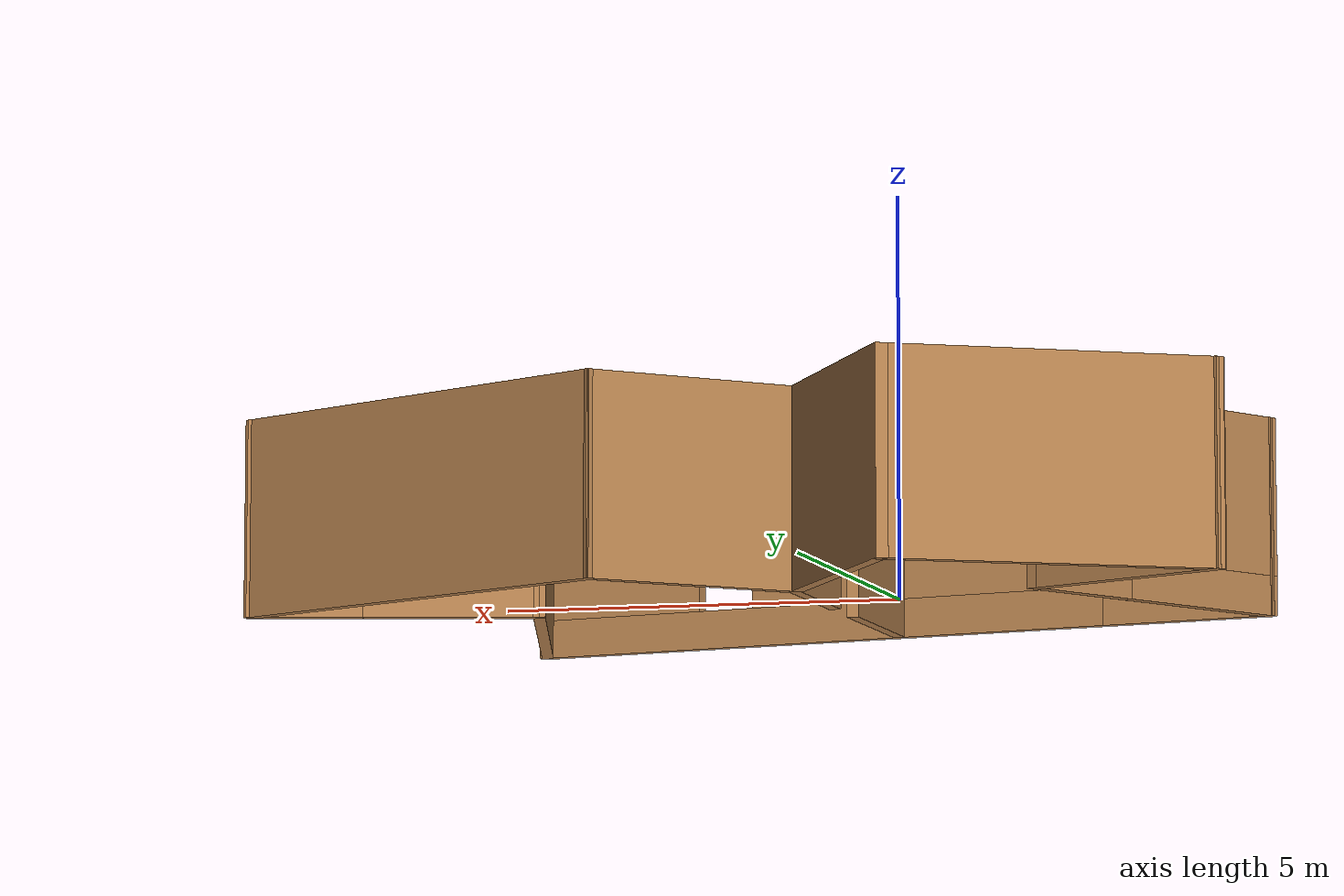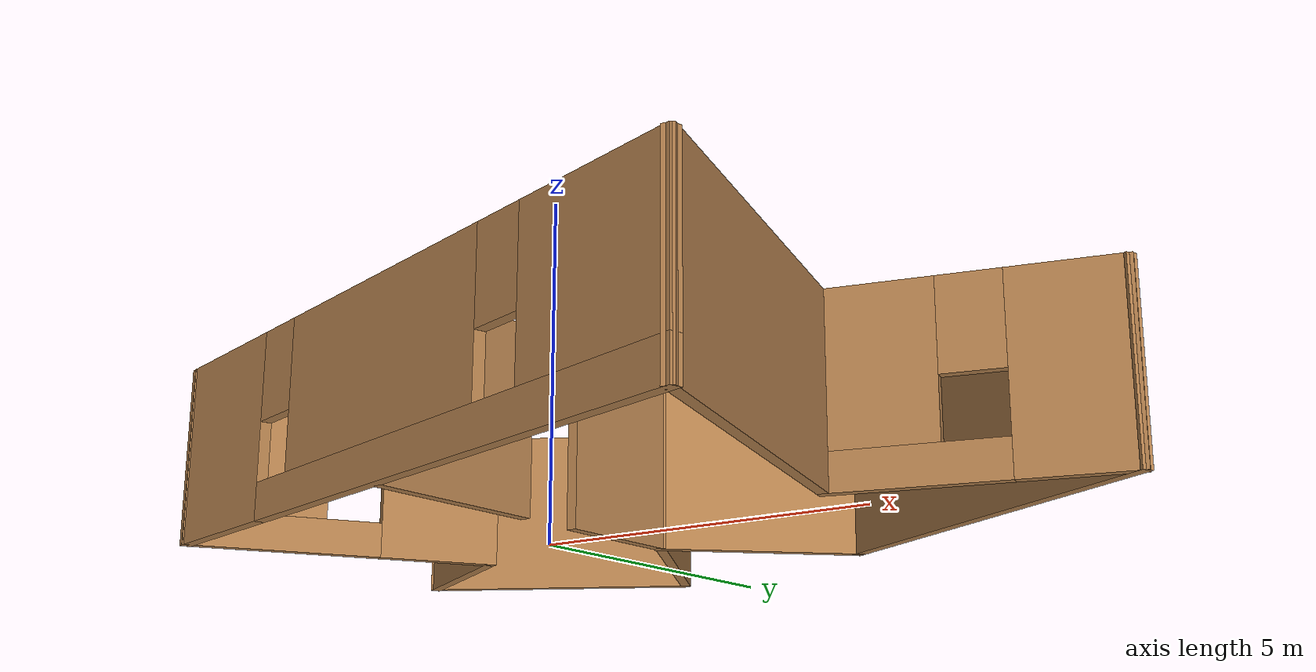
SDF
<?xml version='1.0'?>
<sdf version='1.6'>
  <model name='house3'>
    <pose frame=''>1.98365 -0.67441 0 0 -0 0</pose>
    <link name='Wall_10'>
      <collision name='Wall_10_Collision'>
        <geometry>
          <box>
            <size>3 0.15 2.5</size>
          </box>
        </geometry>
        <pose frame=''>0 0 1.25 0 -0 0</pose>
      </collision>
      <visual name='Wall_10_Visual'>
        <pose frame=''>0 0 1.25 0 -0 0</pose>
        <geometry>
          <box>
            <size>3 0.15 2.5</size>
          </box>
        </geometry>
        <material>
          <script>
            <uri>file://media/materials/scripts/gazebo.material</uri>
            <name>Gazebo/Wood</name>
          </script>
          <ambient>1 1 1 1</ambient>
        </material>
        <meta>
          <layer>0</layer>
        </meta>
      </visual>
      <pose frame=''>-5.09027 2.22528 0 0 -0 2.61799</pose>
    </link>
    <link name='Wall_11'>
      <collision name='Wall_11_Collision'>
        <geometry>
          <box>
            <size>4.25 0.15 2.5</size>
          </box>
        </geometry>
        <pose frame=''>0 0 1.25 0 -0 0</pose>
      </collision>
      <visual name='Wall_11_Visual'>
        <pose frame=''>0 0 1.25 0 -0 0</pose>
        <geometry>
          <box>
            <size>4.25 0.15 2.5</size>
          </box>
        </geometry>
        <material>
          <script>
            <uri>file://media/materials/scripts/gazebo.material</uri>
            <name>Gazebo/Wood</name>
          </script>
          <ambient>1 1 1 1</ambient>
        </material>
        <meta>
          <layer>0</layer>
        </meta>
      </visual>
      <pose frame=''>-4.549 3.96278 0 0 -0 0.523599</pose>
    </link>
    <link name='Wall_12'>
      <collision name='Wall_12_Collision'>
        <geometry>
          <box>
            <size>3.75 0.15 2.5</size>
          </box>
        </geometry>
        <pose frame=''>0 0 1.25 0 -0 0</pose>
      </collision>
      <visual name='Wall_12_Visual'>
        <pose frame=''>0 0 1.25 0 -0 0</pose>
        <geometry>
          <box>
            <size>3.75 0.15 2.5</size>
          </box>
        </geometry>
        <material>
          <script>
            <uri>file://media/materials/scripts/gazebo.material</uri>
            <name>Gazebo/Wood</name>
          </script>
          <ambient>1 1 1 1</ambient>
        </material>
        <meta>
          <layer>0</layer>
        </meta>
      </visual>
      <pose frame=''>-1.87365 3.42894 0 0 0 -1.0472</pose>
    </link>
    <link name='Wall_13'>
      <collision name='Wall_13_Collision'>
        <geometry>
          <box>
            <size>3 0.15 2.5</size>
          </box>
        </geometry>
        <pose frame=''>0 0 1.25 0 -0 0</pose>
      </collision>
      <visual name='Wall_13_Visual'>
        <pose frame=''>0 0 1.25 0 -0 0</pose>
        <geometry>
          <box>
            <size>3 0.15 2.5</size>
          </box>
        </geometry>
        <material>
          <script>
            <uri>file://media/materials/scripts/gazebo.material</uri>
            <name>Gazebo/Wood</name>
          </script>
          <ambient>1 1 1 1</ambient>
        </material>
        <meta>
          <layer>0</layer>
        </meta>
      </visual>
      <pose frame=''>0.033975 2.87772 0 0 -0 0.785398</pose>
    </link>
    <link name='Wall_14'>
      <collision name='Wall_14_Collision'>
        <geometry>
          <box>
            <size>6.25 0.15 2.5</size>
          </box>
        </geometry>
        <pose frame=''>0 0 1.25 0 -0 0</pose>
      </collision>
      <visual name='Wall_14_Visual'>
        <pose frame=''>0 0 1.25 0 -0 0</pose>
        <geometry>
          <box>
            <size>6.25 0.15 2.5</size>
          </box>
        </geometry>
        <material>
          <script>
            <uri>file://media/materials/scripts/gazebo.material</uri>
            <name>Gazebo/Wood</name>
          </script>
          <ambient>1 1 1 1</ambient>
        </material>
        <meta>
          <layer>0</layer>
        </meta>
      </visual>
      <pose frame=''>3.68298 2.36035 0 0 0 -0.523599</pose>
    </link>
    <link name='Wall_15'>
      <pose frame=''>4.58569 0.369473 0 0 0 -2.87979</pose>
      <visual name='Wall_15_Visual_0'>
        <pose frame=''>-1.14339 0 1.25 0 -0 0</pose>
        <geometry>
          <box>
            <size>1.46321 0.15 2.5</size>
          </box>
        </geometry>
        <material>
          <script>
            <uri>file://media/materials/scripts/gazebo.material</uri>
            <name>Gazebo/Wood</name>
          </script>
          <ambient>1 1 1 1</ambient>
        </material>
        <meta>
          <layer>0</layer>
        </meta>
      </visual>
      <collision name='Wall_15_Collision_0'>
        <geometry>
          <box>
            <size>1.46321 0.15 2.5</size>
          </box>
        </geometry>
        <pose frame=''>-1.14339 0 1.25 0 -0 0</pose>
      </collision>
      <visual name='Wall_15_Visual_1'>
        <pose frame=''>0.731605 0 0.25 0 -0 0</pose>
        <geometry>
          <box>
            <size>2.28679 0.15 0.5</size>
          </box>
        </geometry>
        <material>
          <script>
            <uri>file://media/materials/scripts/gazebo.material</uri>
            <name>Gazebo/Wood</name>
          </script>
          <ambient>1 1 1 1</ambient>
        </material>
        <meta>
          <layer>0</layer>
        </meta>
      </visual>
      <collision name='Wall_15_Collision_1'>
        <geometry>
          <box>
            <size>2.28679 0.15 0.5</size>
          </box>
        </geometry>
        <pose frame=''>0.731605 0 0.25 0 -0 0</pose>
      </collision>
      <visual name='Wall_15_Visual_2'>
        <pose frame=''>1.1316 0 1.5 0 -0 0</pose>
        <geometry>
          <box>
            <size>1.48679 0.15 2</size>
          </box>
        </geometry>
        <material>
          <script>
            <uri>file://media/materials/scripts/gazebo.material</uri>
            <name>Gazebo/Wood</name>
          </script>
          <ambient>1 1 1 1</ambient>
        </material>
        <meta>
          <layer>0</layer>
        </meta>
      </visual>
      <collision name='Wall_15_Collision_2'>
        <geometry>
          <box>
            <size>1.48679 0.15 2</size>
          </box>
        </geometry>
        <pose frame=''>1.1316 0 1.5 0 -0 0</pose>
      </collision>
      <visual name='Wall_15_Visual_3'>
        <pose frame=''>-0.01179 0 1.9 0 -0 0</pose>
        <geometry>
          <box>
            <size>0.8 0.15 1.2</size>
          </box>
        </geometry>
        <material>
          <script>
            <uri>file://media/materials/scripts/gazebo.material</uri>
            <name>Gazebo/Wood</name>
          </script>
          <ambient>1 1 1 1</ambient>
        </material>
        <meta>
          <layer>0</layer>
        </meta>
      </visual>
      <collision name='Wall_15_Collision_3'>
        <geometry>
          <box>
            <size>0.8 0.15 1.2</size>
          </box>
        </geometry>
        <pose frame=''>-0.01179 0 1.9 0 -0 0</pose>
      </collision>
    </link>
    <link name='Wall_16'>
      <collision name='Wall_16_Collision'>
        <geometry>
          <box>
            <size>5.23685 0.15 2.5</size>
          </box>
        </geometry>
        <pose frame=''>0 0 1.25 0 -0 0</pose>
      </collision>
      <visual name='Wall_16_Visual'>
        <pose frame=''>0 0 1.25 0 -0 0</pose>
        <geometry>
          <box>
            <size>5.23685 0.15 2.5</size>
          </box>
        </geometry>
        <material>
          <script>
            <uri>file://media/materials/scripts/gazebo.material</uri>
            <name>Gazebo/Wood</name>
          </script>
          <ambient>1 1 1 1</ambient>
        </material>
        <meta>
          <layer>0</layer>
        </meta>
      </visual>
      <pose frame=''>3.52733 -2.54716 0 0 0 -1.30002</pose>
    </link>
    <link name='Wall_18'>
      <pose frame=''>-0.973652 -0.804907 0 0 0 -1.5708</pose>
      <visual name='Wall_18_Visual_0'>
        <pose frame=''>-1.72994 0 1.25 0 -0 0</pose>
        <geometry>
          <box>
            <size>2.04013 0.15 2.5</size>
          </box>
        </geometry>
        <material>
          <script>
            <uri>file://media/materials/scripts/gazebo.material</uri>
            <name>Gazebo/Wood</name>
          </script>
          <ambient>1 1 1 1</ambient>
        </material>
        <meta>
          <layer>0</layer>
        </meta>
      </visual>
      <collision name='Wall_18_Collision_0'>
        <geometry>
          <box>
            <size>2.04013 0.15 2.5</size>
          </box>
        </geometry>
        <pose frame=''>-1.72994 0 1.25 0 -0 0</pose>
      </collision>
      <visual name='Wall_18_Visual_1'>
        <pose frame=''>1.47006 0 1.25 0 -0 0</pose>
        <geometry>
          <box>
            <size>2.55987 0.15 2.5</size>
          </box>
        </geometry>
        <material>
          <script>
            <uri>file://media/materials/scripts/gazebo.material</uri>
            <name>Gazebo/Wood</name>
          </script>
          <ambient>1 1 1 1</ambient>
        </material>
        <meta>
          <layer>0</layer>
        </meta>
      </visual>
      <collision name='Wall_18_Collision_1'>
        <geometry>
          <box>
            <size>2.55987 0.15 2.5</size>
          </box>
        </geometry>
        <pose frame=''>1.47006 0 1.25 0 -0 0</pose>
      </collision>
      <visual name='Wall_18_Visual_2'>
        <pose frame=''>-0.259873 0 2.25 0 -0 0</pose>
        <geometry>
          <box>
            <size>0.9 0.15 0.5</size>
          </box>
        </geometry>
        <material>
          <script>
            <uri>file://media/materials/scripts/gazebo.material</uri>
            <name>Gazebo/Wood</name>
          </script>
          <ambient>1 1 1 1</ambient>
        </material>
        <meta>
          <layer>0</layer>
        </meta>
      </visual>
      <collision name='Wall_18_Collision_2'>
        <geometry>
          <box>
            <size>0.9 0.15 0.5</size>
          </box>
        </geometry>
        <pose frame=''>-0.259873 0 2.25 0 -0 0</pose>
      </collision>
    </link>
    <link name='Wall_4'>
      <pose frame=''>-4.94368 -0.370821 0 0 0 -2.0944</pose>
      <visual name='Wall_4_Visual_0'>
        <pose frame=''>-1.38042 0 1.25 0 -0 0</pose>
        <geometry>
          <box>
            <size>1.73917 0.15 2.5</size>
          </box>
        </geometry>
        <material>
          <script>
            <uri>file://media/materials/scripts/gazebo.material</uri>
            <name>Gazebo/Wood</name>
          </script>
          <ambient>1 1 1 1</ambient>
        </material>
        <meta>
          <layer>0</layer>
        </meta>
      </visual>
      <collision name='Wall_4_Collision_0'>
        <geometry>
          <box>
            <size>1.73917 0.15 2.5</size>
          </box>
        </geometry>
        <pose frame=''>-1.38042 0 1.25 0 -0 0</pose>
      </collision>
      <visual name='Wall_4_Visual_1'>
        <pose frame=''>0.869584 0 0.25 0 -0 0</pose>
        <geometry>
          <box>
            <size>2.76083 0.15 0.5</size>
          </box>
        </geometry>
        <material>
          <script>
            <uri>file://media/materials/scripts/gazebo.material</uri>
            <name>Gazebo/Wood</name>
          </script>
          <ambient>1 1 1 1</ambient>
        </material>
        <meta>
          <layer>0</layer>
        </meta>
      </visual>
      <collision name='Wall_4_Collision_1'>
        <geometry>
          <box>
            <size>2.76083 0.15 0.5</size>
          </box>
        </geometry>
        <pose frame=''>0.869584 0 0.25 0 -0 0</pose>
      </collision>
      <visual name='Wall_4_Visual_2'>
        <pose frame=''>1.26958 0 1.5 0 -0 0</pose>
        <geometry>
          <box>
            <size>1.96083 0.15 2</size>
          </box>
        </geometry>
        <material>
          <script>
            <uri>file://media/materials/scripts/gazebo.material</uri>
            <name>Gazebo/Wood</name>
          </script>
          <ambient>1 1 1 1</ambient>
        </material>
        <meta>
          <layer>0</layer>
        </meta>
      </visual>
      <collision name='Wall_4_Collision_2'>
        <geometry>
          <box>
            <size>1.96083 0.15 2</size>
          </box>
        </geometry>
        <pose frame=''>1.26958 0 1.5 0 -0 0</pose>
      </collision>
      <visual name='Wall_4_Visual_3'>
        <pose frame=''>-0.110832 0 1.9 0 -0 0</pose>
        <geometry>
          <box>
            <size>0.8 0.15 1.2</size>
          </box>
        </geometry>
        <material>
          <script>
            <uri>file://media/materials/scripts/gazebo.material</uri>
            <name>Gazebo/Wood</name>
          </script>
          <ambient>1 1 1 1</ambient>
        </material>
        <meta>
          <layer>0</layer>
        </meta>
      </visual>
      <collision name='Wall_4_Collision_3'>
        <geometry>
          <box>
            <size>0.8 0.15 1.2</size>
          </box>
        </geometry>
        <pose frame=''>-0.110832 0 1.9 0 -0 0</pose>
      </collision>
    </link>
    <link name='Wall_5'>
      <pose frame=''>-0.911777 -3.62617 0 0 0 -0.261799</pose>
      <visual name='Wall_5_Visual_0'>
        <pose frame=''>-4.19506 0 1.25 0 -0 0</pose>
        <geometry>
          <box>
            <size>2.35988 0.15 2.5</size>
          </box>
        </geometry>
        <material>
          <script>
            <uri>file://media/materials/scripts/gazebo.material</uri>
            <name>Gazebo/Wood</name>
          </script>
          <ambient>1 1 1 1</ambient>
        </material>
        <meta>
          <layer>0</layer>
        </meta>
      </visual>
      <collision name='Wall_5_Collision_0'>
        <geometry>
          <box>
            <size>2.35988 0.15 2.5</size>
          </box>
        </geometry>
        <pose frame=''>-4.19506 0 1.25 0 -0 0</pose>
      </collision>
      <visual name='Wall_5_Visual_1'>
        <pose frame=''>1.17994 0 0.25 0 -0 0</pose>
        <geometry>
          <box>
            <size>8.39012 0.15 0.5</size>
          </box>
        </geometry>
        <material>
          <script>
            <uri>file://media/materials/scripts/gazebo.material</uri>
            <name>Gazebo/Wood</name>
          </script>
          <ambient>1 1 1 1</ambient>
        </material>
        <meta>
          <layer>0</layer>
        </meta>
      </visual>
      <collision name='Wall_5_Collision_1'>
        <geometry>
          <box>
            <size>8.39012 0.15 0.5</size>
          </box>
        </geometry>
        <pose frame=''>1.17994 0 0.25 0 -0 0</pose>
      </collision>
      <visual name='Wall_5_Visual_2'>
        <pose frame=''>-0.054945 0 1.5 0 -0 0</pose>
        <geometry>
          <box>
            <size>4.32035 0.15 2</size>
          </box>
        </geometry>
        <material>
          <script>
            <uri>file://media/materials/scripts/gazebo.material</uri>
            <name>Gazebo/Wood</name>
          </script>
          <ambient>1 1 1 1</ambient>
        </material>
        <meta>
          <layer>0</layer>
        </meta>
      </visual>
      <collision name='Wall_5_Collision_2'>
        <geometry>
          <box>
            <size>4.32035 0.15 2</size>
          </box>
        </geometry>
        <pose frame=''>-0.054945 0 1.5 0 -0 0</pose>
      </collision>
      <visual name='Wall_5_Visual_3'>
        <pose frame=''>4.14011 0 1.5 0 -0 0</pose>
        <geometry>
          <box>
            <size>2.46977 0.15 2</size>
          </box>
        </geometry>
        <material>
          <script>
            <uri>file://media/materials/scripts/gazebo.material</uri>
            <name>Gazebo/Wood</name>
          </script>
          <ambient>1 1 1 1</ambient>
        </material>
        <meta>
          <layer>0</layer>
        </meta>
      </visual>
      <collision name='Wall_5_Collision_3'>
        <geometry>
          <box>
            <size>2.46977 0.15 2</size>
          </box>
        </geometry>
        <pose frame=''>4.14011 0 1.5 0 -0 0</pose>
      </collision>
      <visual name='Wall_5_Visual_4'>
        <pose frame=''>-2.61512 0 1.9 0 -0 0</pose>
        <geometry>
          <box>
            <size>0.8 0.15 1.2</size>
          </box>
        </geometry>
        <material>
          <script>
            <uri>file://media/materials/scripts/gazebo.material</uri>
            <name>Gazebo/Wood</name>
          </script>
          <ambient>1 1 1 1</ambient>
        </material>
        <meta>
          <layer>0</layer>
        </meta>
      </visual>
      <collision name='Wall_5_Collision_4'>
        <geometry>
          <box>
            <size>0.8 0.15 1.2</size>
          </box>
        </geometry>
        <pose frame=''>-2.61512 0 1.9 0 -0 0</pose>
      </collision>
      <visual name='Wall_5_Visual_5'>
        <pose frame=''>2.50523 0 1.9 0 -0 0</pose>
        <geometry>
          <box>
            <size>0.8 0.15 1.2</size>
          </box>
        </geometry>
        <material>
          <script>
            <uri>file://media/materials/scripts/gazebo.material</uri>
            <name>Gazebo/Wood</name>
          </script>
          <ambient>1 1 1 1</ambient>
        </material>
        <meta>
          <layer>0</layer>
        </meta>
      </visual>
      <collision name='Wall_5_Collision_5'>
        <geometry>
          <box>
            <size>0.8 0.15 1.2</size>
          </box>
        </geometry>
        <pose frame=''>2.50523 0 1.9 0 -0 0</pose>
      </collision>
    </link>
    <static>1</static>
  </model>
</sdf>
